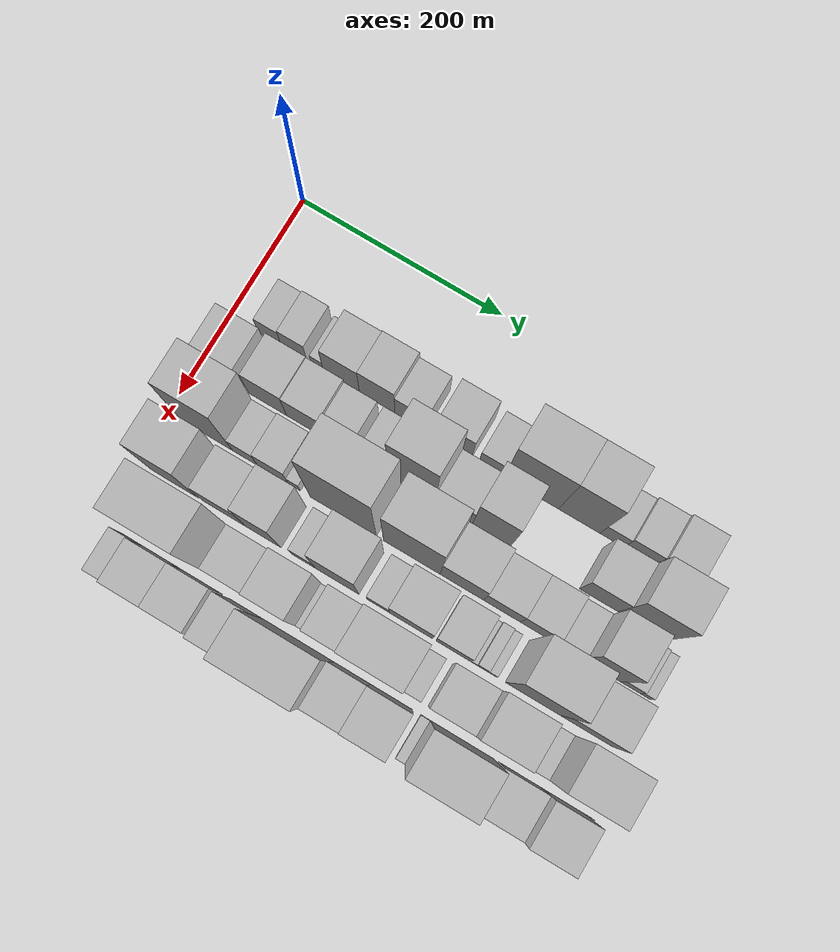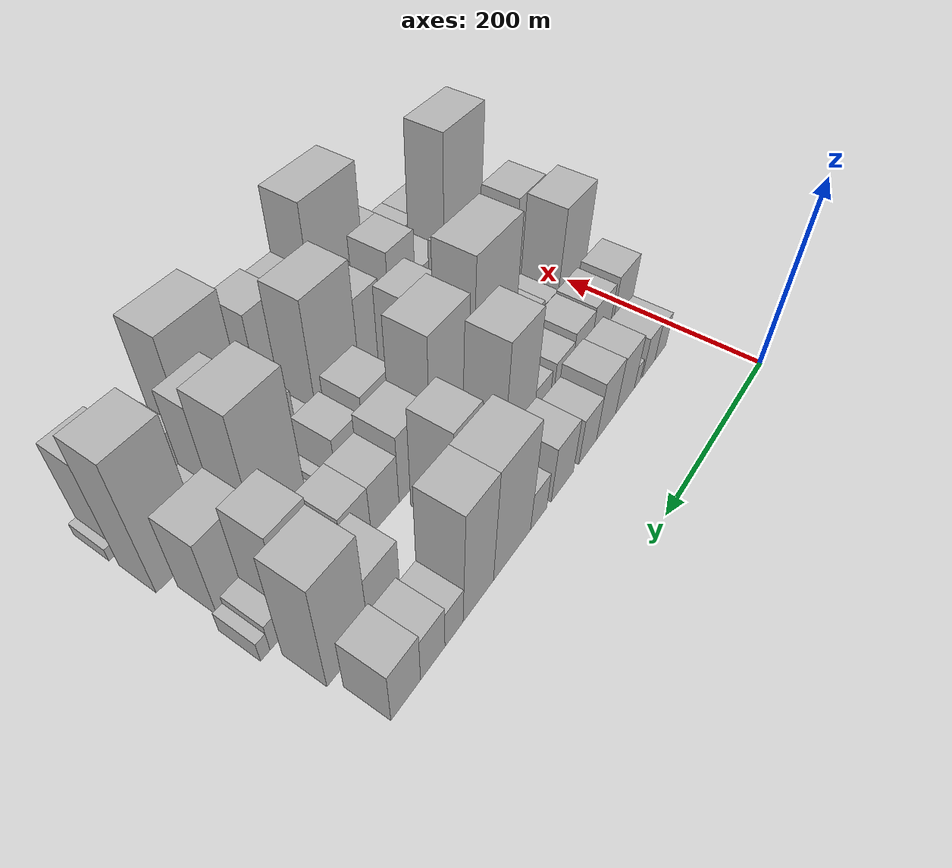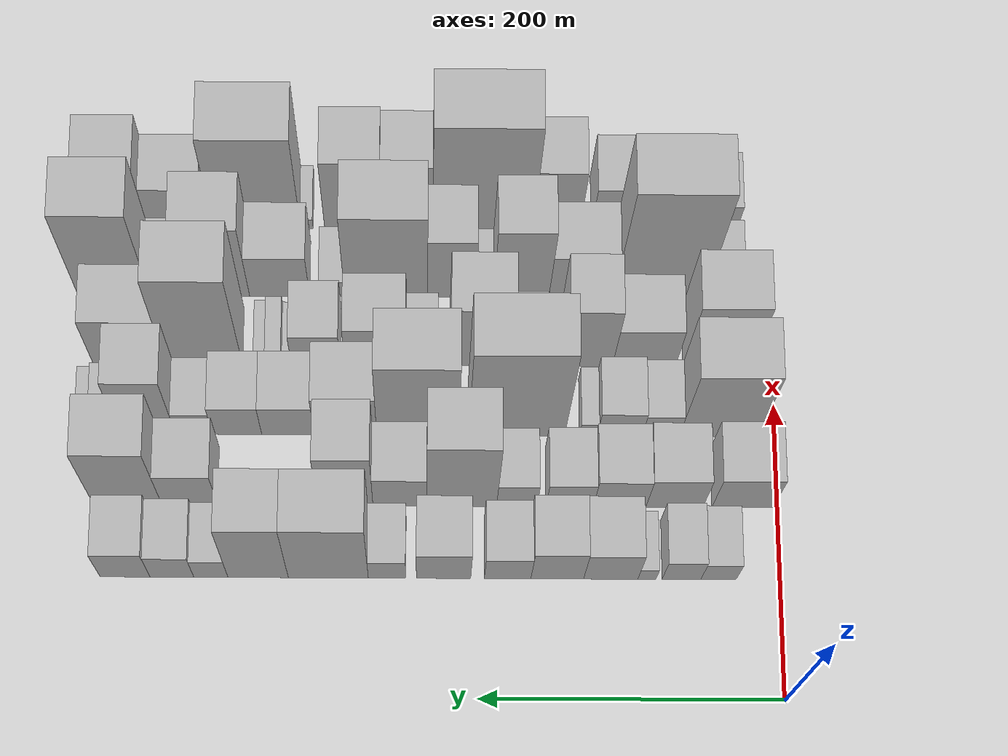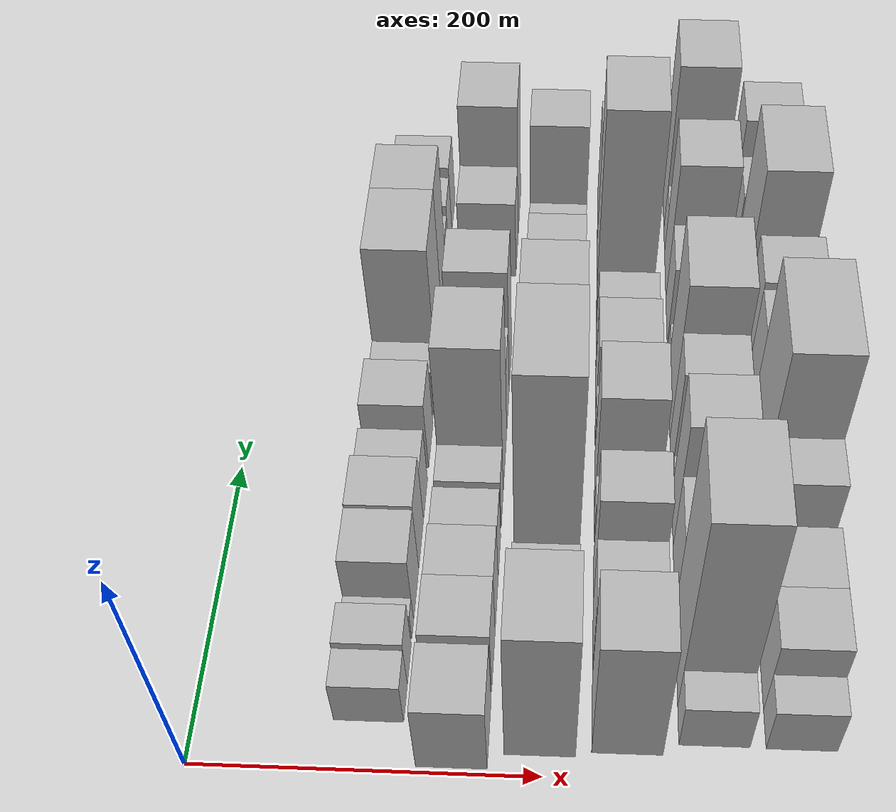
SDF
<sdf version="1.6">
 <world name="default">
  <model name="building_26">
   <static>1</static>
   <pose>100.0000 40.9273 0 0.000000 0.000000 0.000000</pose>
   <link name="link">
    <pose>0 0 21.00 0 0 0</pose>
    <collision name="collision"><geometry><box><size>40.0000 23.2941 42.0000</size></box></geometry></collision>
    <visual name="visual">
     <cast_shadows>0</cast_shadows>
     <geometry><box><size>40.0000 23.2941 42.0000</size></box></geometry>
     <material>
      <script>
       <uri>model://HANNAS_wall/materials/scripts</uri>
       <uri>model://HANNAS_wall/materials/textures</uri>
       <name>vrc/HANNAS_wall</name>
      </script>
     </material>
    </visual>
   </link>
  </model>
  <model name="building_27">
   <static>1</static>
   <pose>100.0000 65.3385 0 0.000000 0.000000 0.000000</pose>
   <link name="link">
    <pose>0 0 24.00 0 0 0</pose>
    <collision name="collision"><geometry><box><size>40.0000 25.5284 48.0000</size></box></geometry></collision>
    <visual name="visual">
     <cast_shadows>0</cast_shadows>
     <geometry><box><size>40.0000 25.5284 48.0000</size></box></geometry>
     <material>
      <script>
       <uri>model://HANNAS_wall/materials/scripts</uri>
       <uri>model://HANNAS_wall/materials/textures</uri>
       <name>vrc/HANNAS_wall</name>
      </script>
     </material>
    </visual>
   </link>
  </model>
  <model name="building_28">
   <static>1</static>
   <pose>100.0000 88.1129 0 0.000000 0.000000 0.000000</pose>
   <link name="link">
    <pose>0 0 13.50 0 0 0</pose>
    <collision name="collision"><geometry><box><size>40.0000 12.0204 27.0000</size></box></geometry></collision>
    <visual name="visual">
     <cast_shadows>0</cast_shadows>
     <geometry><box><size>40.0000 12.0204 27.0000</size></box></geometry>
     <material>
      <script>
       <uri>model://HANNAS_wall/materials/scripts</uri>
       <uri>model://HANNAS_wall/materials/textures</uri>
       <name>vrc/HANNAS_wall</name>
      </script>
     </material>
    </visual>
   </link>
  </model>
  <model name="building_29">
   <static>1</static>
   <pose>100.0000 112.0169 0 0.000000 0.000000 0.000000</pose>
   <link name="link">
    <pose>0 0 33.00 0 0 0</pose>
    <collision name="collision"><geometry><box><size>40.0000 35.7874 66.0000</size></box></geometry></collision>
    <visual name="visual">
     <cast_shadows>0</cast_shadows>
     <geometry><box><size>40.0000 35.7874 66.0000</size></box></geometry>
     <material>
      <script>
       <uri>model://HANNAS_wall/materials/scripts</uri>
       <uri>model://HANNAS_wall/materials/textures</uri>
       <name>vrc/HANNAS_wall</name>
      </script>
     </material>
    </visual>
   </link>
  </model>
  <model name="building_30">
   <static>1</static>
   <pose>100.0000 147.3166 0 0.000000 0.000000 0.000000</pose>
   <link name="link">
    <pose>0 0 34.50 0 0 0</pose>
    <collision name="collision"><geometry><box><size>40.0000 34.8121 69.0000</size></box></geometry></collision>
    <visual name="visual">
     <cast_shadows>0</cast_shadows>
     <geometry><box><size>40.0000 34.8121 69.0000</size></box></geometry>
     <material>
      <script>
       <uri>model://HANNAS_wall/materials/scripts</uri>
       <uri>model://HANNAS_wall/materials/textures</uri>
       <name>vrc/HANNAS_wall</name>
      </script>
     </material>
    </visual>
   </link>
  </model>
  <model name="building_31">
   <static>1</static>
   <pose>100.0000 180.0864 0 0.000000 0.000000 0.000000</pose>
   <link name="link">
    <pose>0 0 27.00 0 0 0</pose>
    <collision name="collision"><geometry><box><size>40.0000 30.7275 54.0000</size></box></geometry></collision>
    <visual name="visual">
     <cast_shadows>0</cast_shadows>
     <geometry><box><size>40.0000 30.7275 54.0000</size></box></geometry>
     <material>
      <script>
       <uri>model://HANNAS_wall/materials/scripts</uri>
       <uri>model://HANNAS_wall/materials/textures</uri>
       <name>vrc/HANNAS_wall</name>
      </script>
     </material>
    </visual>
   </link>
  </model>
  <model name="building_32">
   <static>1</static>
   <pose>100.0000 222.3811 0 0.000000 0.000000 0.000000</pose>
   <link name="link">
    <pose>0 0 33.00 0 0 0</pose>
    <collision name="collision"><geometry><box><size>40.0000 35.8618 66.0000</size></box></geometry></collision>
    <visual name="visual">
     <cast_shadows>0</cast_shadows>
     <geometry><box><size>40.0000 35.8618 66.0000</size></box></geometry>
     <material>
      <script>
       <uri>model://HANNAS_wall/materials/scripts</uri>
       <uri>model://HANNAS_wall/materials/textures</uri>
       <name>vrc/HANNAS_wall</name>
      </script>
     </material>
    </visual>
   </link>
  </model>
  <model name="building_33">
   <static>1</static>
   <pose>100.0000 259.6715 0 0.000000 0.000000 0.000000</pose>
   <link name="link">
    <pose>0 0 22.50 0 0 0</pose>
    <collision name="collision"><geometry><box><size>40.0000 24.7191 45.0000</size></box></geometry></collision>
    <visual name="visual">
     <cast_shadows>0</cast_shadows>
     <geometry><box><size>40.0000 24.7191 45.0000</size></box></geometry>
     <material>
      <script>
       <uri>model://HANNAS_wall/materials/scripts</uri>
       <uri>model://HANNAS_wall/materials/textures</uri>
       <name>vrc/HANNAS_wall</name>
      </script>
     </material>
    </visual>
   </link>
  </model>
  <model name="building_34">
   <static>1</static>
   <pose>100.0000 298.4205 0 0.000000 0.000000 0.000000</pose>
   <link name="link">
    <pose>0 0 66.00 0 0 0</pose>
    <collision name="collision"><geometry><box><size>40.0000 52.7788 132.0000</size></box></geometry></collision>
    <visual name="visual">
     <cast_shadows>0</cast_shadows>
     <geometry><box><size>40.0000 52.7788 132.0000</size></box></geometry>
     <material>
      <script>
       <uri>model://HANNAS_wall/materials/scripts</uri>
       <uri>model://HANNAS_wall/materials/textures</uri>
       <name>vrc/HANNAS_wall</name>
      </script>
     </material>
    </visual>
   </link>
  </model>
  <model name="building_35">
   <static>1</static>
   <pose>100.0000 344.7468 0 0.000000 0.000000 0.000000</pose>
   <link name="link">
    <pose>0 0 66.00 0 0 0</pose>
    <collision name="collision"><geometry><box><size>40.0000 39.8739 132.0000</size></box></geometry></collision>
    <visual name="visual">
     <cast_shadows>0</cast_shadows>
     <geometry><box><size>40.0000 39.8739 132.0000</size></box></geometry>
     <material>
      <script>
       <uri>model://HANNAS_wall/materials/scripts</uri>
       <uri>model://HANNAS_wall/materials/textures</uri>
       <name>vrc/HANNAS_wall</name>
      </script>
     </material>
    </visual>
   </link>
  </model>
  <model name="building_36">
   <static>1</static>
   <pose>100.0000 375.9424 0 0.000000 0.000000 0.000000</pose>
   <link name="link">
    <pose>0 0 22.50 0 0 0</pose>
    <collision name="collision"><geometry><box><size>40.0000 22.5172 45.0000</size></box></geometry></collision>
    <visual name="visual">
     <cast_shadows>0</cast_shadows>
     <geometry><box><size>40.0000 22.5172 45.0000</size></box></geometry>
     <material>
      <script>
       <uri>model://HANNAS_wall/materials/scripts</uri>
       <uri>model://HANNAS_wall/materials/textures</uri>
       <name>vrc/HANNAS_wall</name>
      </script>
     </material>
    </visual>
   </link>
  </model>
  <model name="building_37">
   <static>1</static>
   <pose>100.0000 401.6316 0 0.000000 0.000000 0.000000</pose>
   <link name="link">
    <pose>0 0 27.00 0 0 0</pose>
    <collision name="collision"><geometry><box><size>40.0000 28.8611 54.0000</size></box></geometry></collision>
    <visual name="visual">
     <cast_shadows>0</cast_shadows>
     <geometry><box><size>40.0000 28.8611 54.0000</size></box></geometry>
     <material>
      <script>
       <uri>model://HANNAS_wall/materials/scripts</uri>
       <uri>model://HANNAS_wall/materials/textures</uri>
       <name>vrc/HANNAS_wall</name>
      </script>
     </material>
    </visual>
   </link>
  </model>
  <model name="building_38">
   <static>1</static>
   <pose>100.0000 432.5570 0 0.000000 0.000000 0.000000</pose>
   <link name="link">
    <pose>0 0 31.50 0 0 0</pose>
    <collision name="collision"><geometry><box><size>40.0000 32.9896 63.0000</size></box></geometry></collision>
    <visual name="visual">
     <cast_shadows>0</cast_shadows>
     <geometry><box><size>40.0000 32.9896 63.0000</size></box></geometry>
     <material>
      <script>
       <uri>model://HANNAS_wall/materials/scripts</uri>
       <uri>model://HANNAS_wall/materials/textures</uri>
       <name>vrc/HANNAS_wall</name>
      </script>
     </material>
    </visual>
   </link>
  </model>
  <model name="building_75">
   <static>1</static>
   <pose>149.0000 23.5966 0 0.000000 0.000000 0.000000</pose>
   <link name="link">
    <pose>0 0 34.50 0 0 0</pose>
    <collision name="collision"><geometry><box><size>40.0000 40.5964 69.0000</size></box></geometry></collision>
    <visual name="visual">
     <cast_shadows>0</cast_shadows>
     <geometry><box><size>40.0000 40.5964 69.0000</size></box></geometry>
     <material>
      <script>
       <uri>model://HANNAS_wall/materials/scripts</uri>
       <uri>model://HANNAS_wall/materials/textures</uri>
       <name>vrc/HANNAS_wall</name>
      </script>
     </material>
    </visual>
   </link>
  </model>
  <model name="building_76">
   <static>1</static>
   <pose>149.0000 68.8350 0 0.000000 0.000000 0.000000</pose>
   <link name="link">
    <pose>0 0 33.00 0 0 0</pose>
    <collision name="collision"><geometry><box><size>40.0000 37.8805 66.0000</size></box></geometry></collision>
    <visual name="visual">
     <cast_shadows>0</cast_shadows>
     <geometry><box><size>40.0000 37.8805 66.0000</size></box></geometry>
     <material>
      <script>
       <uri>model://HANNAS_wall/materials/scripts</uri>
       <uri>model://HANNAS_wall/materials/textures</uri>
       <name>vrc/HANNAS_wall</name>
      </script>
     </material>
    </visual>
   </link>
  </model>
  <model name="building_77">
   <static>1</static>
   <pose>149.0000 105.3139 0 0.000000 0.000000 0.000000</pose>
   <link name="link">
    <pose>0 0 31.50 0 0 0</pose>
    <collision name="collision"><geometry><box><size>40.0000 35.0773 63.0000</size></box></geometry></collision>
    <visual name="visual">
     <cast_shadows>0</cast_shadows>
     <geometry><box><size>40.0000 35.0773 63.0000</size></box></geometry>
     <material>
      <script>
       <uri>model://HANNAS_wall/materials/scripts</uri>
       <uri>model://HANNAS_wall/materials/textures</uri>
       <name>vrc/HANNAS_wall</name>
      </script>
     </material>
    </visual>
   </link>
  </model>
  <model name="building_78">
   <static>1</static>
   <pose>149.0000 138.5867 0 0.000000 0.000000 0.000000</pose>
   <link name="link">
    <pose>0 0 27.00 0 0 0</pose>
    <collision name="collision"><geometry><box><size>40.0000 31.4684 54.0000</size></box></geometry></collision>
    <visual name="visual">
     <cast_shadows>0</cast_shadows>
     <geometry><box><size>40.0000 31.4684 54.0000</size></box></geometry>
     <material>
      <script>
       <uri>model://HANNAS_wall/materials/scripts</uri>
       <uri>model://HANNAS_wall/materials/textures</uri>
       <name>vrc/HANNAS_wall</name>
      </script>
     </material>
    </visual>
   </link>
  </model>
  <model name="building_79">
   <static>1</static>
   <pose>149.0000 173.7759 0 0.000000 0.000000 0.000000</pose>
   <link name="link">
    <pose>0 0 25.50 0 0 0</pose>
    <collision name="collision"><geometry><box><size>40.0000 26.9100 51.0000</size></box></geometry></collision>
    <visual name="visual">
     <cast_shadows>0</cast_shadows>
     <geometry><box><size>40.0000 26.9100 51.0000</size></box></geometry>
     <material>
      <script>
       <uri>model://HANNAS_wall/materials/scripts</uri>
       <uri>model://HANNAS_wall/materials/textures</uri>
       <name>vrc/HANNAS_wall</name>
      </script>
     </material>
    </visual>
   </link>
  </model>
  <model name="building_80">
   <static>1</static>
   <pose>149.0000 210.4363 0 0.000000 0.000000 0.000000</pose>
   <link name="link">
    <pose>0 0 72.00 0 0 0</pose>
    <collision name="collision"><geometry><box><size>40.0000 46.4108 144.0000</size></box></geometry></collision>
    <visual name="visual">
     <cast_shadows>0</cast_shadows>
     <geometry><box><size>40.0000 46.4108 144.0000</size></box></geometry>
     <material>
      <script>
       <uri>model://HANNAS_wall/materials/scripts</uri>
       <uri>model://HANNAS_wall/materials/textures</uri>
       <name>vrc/HANNAS_wall</name>
      </script>
     </material>
    </visual>
   </link>
  </model>
  <model name="building_81">
   <static>1</static>
   <pose>149.0000 251.5522 0 0.000000 0.000000 0.000000</pose>
   <link name="link">
    <pose>0 0 33.00 0 0 0</pose>
    <collision name="collision"><geometry><box><size>40.0000 35.8211 66.0000</size></box></geometry></collision>
    <visual name="visual">
     <cast_shadows>0</cast_shadows>
     <geometry><box><size>40.0000 35.8211 66.0000</size></box></geometry>
     <material>
      <script>
       <uri>model://HANNAS_wall/materials/scripts</uri>
       <uri>model://HANNAS_wall/materials/textures</uri>
       <name>vrc/HANNAS_wall</name>
      </script>
     </material>
    </visual>
   </link>
  </model>
  <model name="building_82">
   <static>1</static>
   <pose>149.0000 287.7121 0 0.000000 0.000000 0.000000</pose>
   <link name="link">
    <pose>0 0 58.50 0 0 0</pose>
    <collision name="collision"><geometry><box><size>40.0000 36.4986 117.0000</size></box></geometry></collision>
    <visual name="visual">
     <cast_shadows>0</cast_shadows>
     <geometry><box><size>40.0000 36.4986 117.0000</size></box></geometry>
     <material>
      <script>
       <uri>model://HANNAS_wall/materials/scripts</uri>
       <uri>model://HANNAS_wall/materials/textures</uri>
       <name>vrc/HANNAS_wall</name>
      </script>
     </material>
    </visual>
   </link>
  </model>
  <model name="building_83">
   <static>1</static>
   <pose>149.0000 391.4420 0 0.000000 0.000000 0.000000</pose>
   <link name="link">
    <pose>0 0 36.00 0 0 0</pose>
    <collision name="collision"><geometry><box><size>40.0000 36.9871 72.0000</size></box></geometry></collision>
    <visual name="visual">
     <cast_shadows>0</cast_shadows>
     <geometry><box><size>40.0000 36.9871 72.0000</size></box></geometry>
     <material>
      <script>
       <uri>model://HANNAS_wall/materials/scripts</uri>
       <uri>model://HANNAS_wall/materials/textures</uri>
       <name>vrc/HANNAS_wall</name>
      </script>
     </material>
    </visual>
   </link>
  </model>
  <model name="building_84">
   <static>1</static>
   <pose>149.0000 432.7237 0 0.000000 0.000000 0.000000</pose>
   <link name="link">
    <pose>0 0 63.00 0 0 0</pose>
    <collision name="collision"><geometry><box><size>40.0000 45.5762 126.0000</size></box></geometry></collision>
    <visual name="visual">
     <cast_shadows>0</cast_shadows>
     <geometry><box><size>40.0000 45.5762 126.0000</size></box></geometry>
     <material>
      <script>
       <uri>model://HANNAS_wall/materials/scripts</uri>
       <uri>model://HANNAS_wall/materials/textures</uri>
       <name>vrc/HANNAS_wall</name>
      </script>
     </material>
    </visual>
   </link>
  </model>
  <model name="building_122">
   <static>1</static>
   <pose>198.0000 38.3296 0 0.000000 0.000000 0.000000</pose>
   <link name="link">
    <pose>0 0 67.50 0 0 0</pose>
    <collision name="collision"><geometry><box><size>40.0000 52.1676 135.0000</size></box></geometry></collision>
    <visual name="visual">
     <cast_shadows>0</cast_shadows>
     <geometry><box><size>40.0000 52.1676 135.0000</size></box></geometry>
     <material>
      <script>
       <uri>model://HANNAS_wall/materials/scripts</uri>
       <uri>model://HANNAS_wall/materials/textures</uri>
       <name>vrc/HANNAS_wall</name>
      </script>
     </material>
    </visual>
   </link>
  </model>
  <model name="building_123">
   <static>1</static>
   <pose>198.0000 76.8443 0 0.000000 0.000000 0.000000</pose>
   <link name="link">
    <pose>0 0 22.50 0 0 0</pose>
    <collision name="collision"><geometry><box><size>40.0000 24.8618 45.0000</size></box></geometry></collision>
    <visual name="visual">
     <cast_shadows>0</cast_shadows>
     <geometry><box><size>40.0000 24.8618 45.0000</size></box></geometry>
     <material>
      <script>
       <uri>model://HANNAS_wall/materials/scripts</uri>
       <uri>model://HANNAS_wall/materials/textures</uri>
       <name>vrc/HANNAS_wall</name>
      </script>
     </material>
    </visual>
   </link>
  </model>
  <model name="building_124">
   <static>1</static>
   <pose>198.0000 104.3820 0 0.000000 0.000000 0.000000</pose>
   <link name="link">
    <pose>0 0 25.50 0 0 0</pose>
    <collision name="collision"><geometry><box><size>40.0000 30.2136 51.0000</size></box></geometry></collision>
    <visual name="visual">
     <cast_shadows>0</cast_shadows>
     <geometry><box><size>40.0000 30.2136 51.0000</size></box></geometry>
     <material>
      <script>
       <uri>model://HANNAS_wall/materials/scripts</uri>
       <uri>model://HANNAS_wall/materials/textures</uri>
       <name>vrc/HANNAS_wall</name>
      </script>
     </material>
    </visual>
   </link>
  </model>
  <model name="building_125">
   <static>1</static>
   <pose>198.0000 125.4242 0 0.000000 0.000000 0.000000</pose>
   <link name="link">
    <pose>0 0 13.50 0 0 0</pose>
    <collision name="collision"><geometry><box><size>40.0000 11.8709 27.0000</size></box></geometry></collision>
    <visual name="visual">
     <cast_shadows>0</cast_shadows>
     <geometry><box><size>40.0000 11.8709 27.0000</size></box></geometry>
     <material>
      <script>
       <uri>model://HANNAS_wall/materials/scripts</uri>
       <uri>model://HANNAS_wall/materials/textures</uri>
       <name>vrc/HANNAS_wall</name>
      </script>
     </material>
    </visual>
   </link>
  </model>
  <model name="building_126">
   <static>1</static>
   <pose>198.0000 173.5772 0 0.000000 0.000000 0.000000</pose>
   <link name="link">
    <pose>0 0 90.00 0 0 0</pose>
    <collision name="collision"><geometry><box><size>40.0000 64.4351 180.0000</size></box></geometry></collision>
    <visual name="visual">
     <cast_shadows>0</cast_shadows>
     <geometry><box><size>40.0000 64.4351 180.0000</size></box></geometry>
     <material>
      <script>
       <uri>model://HANNAS_wall/materials/scripts</uri>
       <uri>model://HANNAS_wall/materials/textures</uri>
       <name>vrc/HANNAS_wall</name>
      </script>
     </material>
    </visual>
   </link>
  </model>
  <model name="building_127">
   <static>1</static>
   <pose>198.0000 240.1357 0 0.000000 0.000000 0.000000</pose>
   <link name="link">
    <pose>0 0 75.00 0 0 0</pose>
    <collision name="collision"><geometry><box><size>40.0000 54.6819 150.0000</size></box></geometry></collision>
    <visual name="visual">
     <cast_shadows>0</cast_shadows>
     <geometry><box><size>40.0000 54.6819 150.0000</size></box></geometry>
     <material>
      <script>
       <uri>model://HANNAS_wall/materials/scripts</uri>
       <uri>model://HANNAS_wall/materials/textures</uri>
       <name>vrc/HANNAS_wall</name>
      </script>
     </material>
    </visual>
   </link>
  </model>
  <model name="building_128">
   <static>1</static>
   <pose>198.0000 288.4253 0 0.000000 0.000000 0.000000</pose>
   <link name="link">
    <pose>0 0 40.50 0 0 0</pose>
    <collision name="collision"><geometry><box><size>40.0000 41.8972 81.0000</size></box></geometry></collision>
    <visual name="visual">
     <cast_shadows>0</cast_shadows>
     <geometry><box><size>40.0000 41.8972 81.0000</size></box></geometry>
     <material>
      <script>
       <uri>model://HANNAS_wall/materials/scripts</uri>
       <uri>model://HANNAS_wall/materials/textures</uri>
       <name>vrc/HANNAS_wall</name>
      </script>
     </material>
    </visual>
   </link>
  </model>
  <model name="building_129">
   <static>1</static>
   <pose>198.0000 327.0059 0 0.000000 0.000000 0.000000</pose>
   <link name="link">
    <pose>0 0 30.00 0 0 0</pose>
    <collision name="collision"><geometry><box><size>40.0000 35.2640 60.0000</size></box></geometry></collision>
    <visual name="visual">
     <cast_shadows>0</cast_shadows>
     <geometry><box><size>40.0000 35.2640 60.0000</size></box></geometry>
     <material>
      <script>
       <uri>model://HANNAS_wall/materials/scripts</uri>
       <uri>model://HANNAS_wall/materials/textures</uri>
       <name>vrc/HANNAS_wall</name>
      </script>
     </material>
    </visual>
   </link>
  </model>
  <model name="building_130">
   <static>1</static>
   <pose>198.0000 361.1175 0 0.000000 0.000000 0.000000</pose>
   <link name="link">
    <pose>0 0 30.00 0 0 0</pose>
    <collision name="collision"><geometry><box><size>40.0000 32.9593 60.0000</size></box></geometry></collision>
    <visual name="visual">
     <cast_shadows>0</cast_shadows>
     <geometry><box><size>40.0000 32.9593 60.0000</size></box></geometry>
     <material>
      <script>
       <uri>model://HANNAS_wall/materials/scripts</uri>
       <uri>model://HANNAS_wall/materials/textures</uri>
       <name>vrc/HANNAS_wall</name>
      </script>
     </material>
    </visual>
   </link>
  </model>
  <model name="building_131">
   <static>1</static>
   <pose>198.0000 390.0472 0 0.000000 0.000000 0.000000</pose>
   <link name="link">
    <pose>0 0 22.50 0 0 0</pose>
    <collision name="collision"><geometry><box><size>40.0000 24.9001 45.0000</size></box></geometry></collision>
    <visual name="visual">
     <cast_shadows>0</cast_shadows>
     <geometry><box><size>40.0000 24.9001 45.0000</size></box></geometry>
     <material>
      <script>
       <uri>model://HANNAS_wall/materials/scripts</uri>
       <uri>model://HANNAS_wall/materials/textures</uri>
       <name>vrc/HANNAS_wall</name>
      </script>
     </material>
    </visual>
   </link>
  </model>
  <model name="building_132">
   <static>1</static>
   <pose>198.0000 421.1160 0 0.000000 0.000000 0.000000</pose>
   <link name="link">
    <pose>0 0 58.50 0 0 0</pose>
    <collision name="collision"><geometry><box><size>40.0000 37.2373 117.0000</size></box></geometry></collision>
    <visual name="visual">
     <cast_shadows>0</cast_shadows>
     <geometry><box><size>40.0000 37.2373 117.0000</size></box></geometry>
     <material>
      <script>
       <uri>model://HANNAS_wall/materials/scripts</uri>
       <uri>model://HANNAS_wall/materials/textures</uri>
       <name>vrc/HANNAS_wall</name>
      </script>
     </material>
    </visual>
   </link>
  </model>
  <model name="building_133">
   <static>1</static>
   <pose>198.0000 448.8676 0 0.000000 0.000000 0.000000</pose>
   <link name="link">
    <pose>0 0 16.50 0 0 0</pose>
    <collision name="collision"><geometry><box><size>40.0000 18.2660 33.0000</size></box></geometry></collision>
    <visual name="visual">
     <cast_shadows>0</cast_shadows>
     <geometry><box><size>40.0000 18.2660 33.0000</size></box></geometry>
     <material>
      <script>
       <uri>model://HANNAS_wall/materials/scripts</uri>
       <uri>model://HANNAS_wall/materials/textures</uri>
       <name>vrc/HANNAS_wall</name>
      </script>
     </material>
    </visual>
   </link>
  </model>
  <model name="building_134">
   <static>1</static>
   <pose>198.0000 462.8233 0 0.000000 0.000000 0.000000</pose>
   <link name="link">
    <pose>0 0 12.00 0 0 0</pose>
    <collision name="collision"><geometry><box><size>40.0000 9.6454 24.0000</size></box></geometry></collision>
    <visual name="visual">
     <cast_shadows>0</cast_shadows>
     <geometry><box><size>40.0000 9.6454 24.0000</size></box></geometry>
     <material>
      <script>
       <uri>model://HANNAS_wall/materials/scripts</uri>
       <uri>model://HANNAS_wall/materials/textures</uri>
       <name>vrc/HANNAS_wall</name>
      </script>
     </material>
    </visual>
   </link>
  </model>
  <model name="building_169">
   <static>1</static>
   <pose>247.0000 37.9396 0 0.000000 0.000000 0.000000</pose>
   <link name="link">
    <pose>0 0 61.50 0 0 0</pose>
    <collision name="collision"><geometry><box><size>40.0000 45.5800 123.0000</size></box></geometry></collision>
    <visual name="visual">
     <cast_shadows>0</cast_shadows>
     <geometry><box><size>40.0000 45.5800 123.0000</size></box></geometry>
     <material>
      <script>
       <uri>model://HANNAS_wall/materials/scripts</uri>
       <uri>model://HANNAS_wall/materials/textures</uri>
       <name>vrc/HANNAS_wall</name>
      </script>
     </material>
    </visual>
   </link>
  </model>
  <model name="building_170">
   <static>1</static>
   <pose>247.0000 87.1228 0 0.000000 0.000000 0.000000</pose>
   <link name="link">
    <pose>0 0 37.50 0 0 0</pose>
    <collision name="collision"><geometry><box><size>40.0000 42.7863 75.0000</size></box></geometry></collision>
    <visual name="visual">
     <cast_shadows>0</cast_shadows>
     <geometry><box><size>40.0000 42.7863 75.0000</size></box></geometry>
     <material>
      <script>
       <uri>model://HANNAS_wall/materials/scripts</uri>
       <uri>model://HANNAS_wall/materials/textures</uri>
       <name>vrc/HANNAS_wall</name>
      </script>
     </material>
    </visual>
   </link>
  </model>
  <model name="building_171">
   <static>1</static>
   <pose>247.0000 125.6208 0 0.000000 0.000000 0.000000</pose>
   <link name="link">
    <pose>0 0 57.00 0 0 0</pose>
    <collision name="collision"><geometry><box><size>40.0000 34.2097 114.0000</size></box></geometry></collision>
    <visual name="visual">
     <cast_shadows>0</cast_shadows>
     <geometry><box><size>40.0000 34.2097 114.0000</size></box></geometry>
     <material>
      <script>
       <uri>model://HANNAS_wall/materials/scripts</uri>
       <uri>model://HANNAS_wall/materials/textures</uri>
       <name>vrc/HANNAS_wall</name>
      </script>
     </material>
    </visual>
   </link>
  </model>
  <model name="building_172">
   <static>1</static>
   <pose>247.0000 164.4055 0 0.000000 0.000000 0.000000</pose>
   <link name="link">
    <pose>0 0 19.50 0 0 0</pose>
    <collision name="collision"><geometry><box><size>40.0000 23.3596 39.0000</size></box></geometry></collision>
    <visual name="visual">
     <cast_shadows>0</cast_shadows>
     <geometry><box><size>40.0000 23.3596 39.0000</size></box></geometry>
     <material>
      <script>
       <uri>model://HANNAS_wall/materials/scripts</uri>
       <uri>model://HANNAS_wall/materials/textures</uri>
       <name>vrc/HANNAS_wall</name>
      </script>
     </material>
    </visual>
   </link>
  </model>
  <model name="building_173">
   <static>1</static>
   <pose>247.0000 197.2470 0 0.000000 0.000000 0.000000</pose>
   <link name="link">
    <pose>0 0 58.50 0 0 0</pose>
    <collision name="collision"><geometry><box><size>40.0000 42.3234 117.0000</size></box></geometry></collision>
    <visual name="visual">
     <cast_shadows>0</cast_shadows>
     <geometry><box><size>40.0000 42.3234 117.0000</size></box></geometry>
     <material>
      <script>
       <uri>model://HANNAS_wall/materials/scripts</uri>
       <uri>model://HANNAS_wall/materials/textures</uri>
       <name>vrc/HANNAS_wall</name>
      </script>
     </material>
    </visual>
   </link>
  </model>
  <model name="building_174">
   <static>1</static>
   <pose>247.0000 237.1742 0 0.000000 0.000000 0.000000</pose>
   <link name="link">
    <pose>0 0 18.00 0 0 0</pose>
    <collision name="collision"><geometry><box><size>40.0000 21.5310 36.0000</size></box></geometry></collision>
    <visual name="visual">
     <cast_shadows>0</cast_shadows>
     <geometry><box><size>40.0000 21.5310 36.0000</size></box></geometry>
     <material>
      <script>
       <uri>model://HANNAS_wall/materials/scripts</uri>
       <uri>model://HANNAS_wall/materials/textures</uri>
       <name>vrc/HANNAS_wall</name>
      </script>
     </material>
    </visual>
   </link>
  </model>
  <model name="building_175">
   <static>1</static>
   <pose>247.0000 268.7239 0 0.000000 0.000000 0.000000</pose>
   <link name="link">
    <pose>0 0 37.50 0 0 0</pose>
    <collision name="collision"><geometry><box><size>40.0000 41.5685 75.0000</size></box></geometry></collision>
    <visual name="visual">
     <cast_shadows>0</cast_shadows>
     <geometry><box><size>40.0000 41.5685 75.0000</size></box></geometry>
     <material>
      <script>
       <uri>model://HANNAS_wall/materials/scripts</uri>
       <uri>model://HANNAS_wall/materials/textures</uri>
       <name>vrc/HANNAS_wall</name>
      </script>
     </material>
    </visual>
   </link>
  </model>
  <model name="building_176">
   <static>1</static>
   <pose>247.0000 309.0867 0 0.000000 0.000000 0.000000</pose>
   <link name="link">
    <pose>0 0 30.00 0 0 0</pose>
    <collision name="collision"><geometry><box><size>40.0000 33.1571 60.0000</size></box></geometry></collision>
    <visual name="visual">
     <cast_shadows>0</cast_shadows>
     <geometry><box><size>40.0000 33.1571 60.0000</size></box></geometry>
     <material>
      <script>
       <uri>model://HANNAS_wall/materials/scripts</uri>
       <uri>model://HANNAS_wall/materials/textures</uri>
       <name>vrc/HANNAS_wall</name>
      </script>
     </material>
    </visual>
   </link>
  </model>
  <model name="building_177">
   <static>1</static>
   <pose>247.0000 328.7197 0 0.000000 0.000000 0.000000</pose>
   <link name="link">
    <pose>0 0 7.50 0 0 0</pose>
    <collision name="collision"><geometry><box><size>40.0000 6.1088 15.0000</size></box></geometry></collision>
    <visual name="visual">
     <cast_shadows>0</cast_shadows>
     <geometry><box><size>40.0000 6.1088 15.0000</size></box></geometry>
     <material>
      <script>
       <uri>model://HANNAS_wall/materials/scripts</uri>
       <uri>model://HANNAS_wall/materials/textures</uri>
       <name>vrc/HANNAS_wall</name>
      </script>
     </material>
    </visual>
   </link>
  </model>
  <model name="building_178">
   <static>1</static>
   <pose>247.0000 337.2028 0 0.000000 0.000000 0.000000</pose>
   <link name="link">
    <pose>0 0 13.50 0 0 0</pose>
    <collision name="collision"><geometry><box><size>40.0000 10.8574 27.0000</size></box></geometry></collision>
    <visual name="visual">
     <cast_shadows>0</cast_shadows>
     <geometry><box><size>40.0000 10.8574 27.0000</size></box></geometry>
     <material>
      <script>
       <uri>model://HANNAS_wall/materials/scripts</uri>
       <uri>model://HANNAS_wall/materials/textures</uri>
       <name>vrc/HANNAS_wall</name>
      </script>
     </material>
    </visual>
   </link>
  </model>
  <model name="building_179">
   <static>1</static>
   <pose>247.0000 346.7066 0 0.000000 0.000000 0.000000</pose>
   <link name="link">
    <pose>0 0 9.00 0 0 0</pose>
    <collision name="collision"><geometry><box><size>40.0000 8.1502 18.0000</size></box></geometry></collision>
    <visual name="visual">
     <cast_shadows>0</cast_shadows>
     <geometry><box><size>40.0000 8.1502 18.0000</size></box></geometry>
     <material>
      <script>
       <uri>model://HANNAS_wall/materials/scripts</uri>
       <uri>model://HANNAS_wall/materials/textures</uri>
       <name>vrc/HANNAS_wall</name>
      </script>
     </material>
    </visual>
   </link>
  </model>
  <model name="building_180">
   <static>1</static>
   <pose>247.0000 384.7025 0 0.000000 0.000000 0.000000</pose>
   <link name="link">
    <pose>0 0 85.50 0 0 0</pose>
    <collision name="collision"><geometry><box><size>40.0000 51.8416 171.0000</size></box></geometry></collision>
    <visual name="visual">
     <cast_shadows>0</cast_shadows>
     <geometry><box><size>40.0000 51.8416 171.0000</size></box></geometry>
     <material>
      <script>
       <uri>model://HANNAS_wall/materials/scripts</uri>
       <uri>model://HANNAS_wall/materials/textures</uri>
       <name>vrc/HANNAS_wall</name>
      </script>
     </material>
    </visual>
   </link>
  </model>
  <model name="building_181">
   <static>1</static>
   <pose>247.0000 435.2918 0 0.000000 0.000000 0.000000</pose>
   <link name="link">
    <pose>0 0 45.00 0 0 0</pose>
    <collision name="collision"><geometry><box><size>40.0000 49.3371 90.0000</size></box></geometry></collision>
    <visual name="visual">
     <cast_shadows>0</cast_shadows>
     <geometry><box><size>40.0000 49.3371 90.0000</size></box></geometry>
     <material>
      <script>
       <uri>model://HANNAS_wall/materials/scripts</uri>
       <uri>model://HANNAS_wall/materials/textures</uri>
       <name>vrc/HANNAS_wall</name>
      </script>
     </material>
    </visual>
   </link>
  </model>
  <model name="building_216">
   <static>1</static>
   <pose>296.0000 33.2826 0 0.000000 0.000000 0.000000</pose>
   <link name="link">
    <pose>0 0 22.50 0 0 0</pose>
    <collision name="collision"><geometry><box><size>40.0000 23.3138 45.0000</size></box></geometry></collision>
    <visual name="visual">
     <cast_shadows>0</cast_shadows>
     <geometry><box><size>40.0000 23.3138 45.0000</size></box></geometry>
     <material>
      <script>
       <uri>model://HANNAS_wall/materials/scripts</uri>
       <uri>model://HANNAS_wall/materials/textures</uri>
       <name>vrc/HANNAS_wall</name>
      </script>
     </material>
    </visual>
   </link>
  </model>
  <model name="building_217">
   <static>1</static>
   <pose>296.0000 75.8683 0 0.000000 0.000000 0.000000</pose>
   <link name="link">
    <pose>0 0 97.50 0 0 0</pose>
    <collision name="collision"><geometry><box><size>40.0000 61.8577 195.0000</size></box></geometry></collision>
    <visual name="visual">
     <cast_shadows>0</cast_shadows>
     <geometry><box><size>40.0000 61.8577 195.0000</size></box></geometry>
     <material>
      <script>
       <uri>model://HANNAS_wall/materials/scripts</uri>
       <uri>model://HANNAS_wall/materials/textures</uri>
       <name>vrc/HANNAS_wall</name>
      </script>
     </material>
    </visual>
   </link>
  </model>
  <model name="building_218">
   <static>1</static>
   <pose>296.0000 128.8824 0 0.000000 0.000000 0.000000</pose>
   <link name="link">
    <pose>0 0 39.00 0 0 0</pose>
    <collision name="collision"><geometry><box><size>40.0000 44.1704 78.0000</size></box></geometry></collision>
    <visual name="visual">
     <cast_shadows>0</cast_shadows>
     <geometry><box><size>40.0000 44.1704 78.0000</size></box></geometry>
     <material>
      <script>
       <uri>model://HANNAS_wall/materials/scripts</uri>
       <uri>model://HANNAS_wall/materials/textures</uri>
       <name>vrc/HANNAS_wall</name>
      </script>
     </material>
    </visual>
   </link>
  </model>
  <model name="building_219">
   <static>1</static>
   <pose>296.0000 169.9615 0 0.000000 0.000000 0.000000</pose>
   <link name="link">
    <pose>0 0 63.00 0 0 0</pose>
    <collision name="collision"><geometry><box><size>40.0000 37.9879 126.0000</size></box></geometry></collision>
    <visual name="visual">
     <cast_shadows>0</cast_shadows>
     <geometry><box><size>40.0000 37.9879 126.0000</size></box></geometry>
     <material>
      <script>
       <uri>model://HANNAS_wall/materials/scripts</uri>
       <uri>model://HANNAS_wall/materials/textures</uri>
       <name>vrc/HANNAS_wall</name>
      </script>
     </material>
    </visual>
   </link>
  </model>
  <model name="building_220">
   <static>1</static>
   <pose>296.0000 195.0657 0 0.000000 0.000000 0.000000</pose>
   <link name="link">
    <pose>0 0 13.50 0 0 0</pose>
    <collision name="collision"><geometry><box><size>40.0000 12.2204 27.0000</size></box></geometry></collision>
    <visual name="visual">
     <cast_shadows>0</cast_shadows>
     <geometry><box><size>40.0000 12.2204 27.0000</size></box></geometry>
     <material>
      <script>
       <uri>model://HANNAS_wall/materials/scripts</uri>
       <uri>model://HANNAS_wall/materials/textures</uri>
       <name>vrc/HANNAS_wall</name>
      </script>
     </material>
    </visual>
   </link>
  </model>
  <model name="building_221">
   <static>1</static>
   <pose>296.0000 217.4576 0 0.000000 0.000000 0.000000</pose>
   <link name="link">
    <pose>0 0 54.00 0 0 0</pose>
    <collision name="collision"><geometry><box><size>40.0000 32.5634 108.0000</size></box></geometry></collision>
    <visual name="visual">
     <cast_shadows>0</cast_shadows>
     <geometry><box><size>40.0000 32.5634 108.0000</size></box></geometry>
     <material>
      <script>
       <uri>model://HANNAS_wall/materials/scripts</uri>
       <uri>model://HANNAS_wall/materials/textures</uri>
       <name>vrc/HANNAS_wall</name>
      </script>
     </material>
    </visual>
   </link>
  </model>
  <model name="building_222">
   <static>1</static>
   <pose>296.0000 262.0290 0 0.000000 0.000000 0.000000</pose>
   <link name="link">
    <pose>0 0 75.00 0 0 0</pose>
    <collision name="collision"><geometry><box><size>40.0000 56.5795 150.0000</size></box></geometry></collision>
    <visual name="visual">
     <cast_shadows>0</cast_shadows>
     <geometry><box><size>40.0000 56.5795 150.0000</size></box></geometry>
     <material>
      <script>
       <uri>model://HANNAS_wall/materials/scripts</uri>
       <uri>model://HANNAS_wall/materials/textures</uri>
       <name>vrc/HANNAS_wall</name>
      </script>
     </material>
    </visual>
   </link>
  </model>
  <model name="building_223">
   <static>1</static>
   <pose>296.0000 298.7848 0 0.000000 0.000000 0.000000</pose>
   <link name="link">
    <pose>0 0 15.00 0 0 0</pose>
    <collision name="collision"><geometry><box><size>40.0000 16.9320 30.0000</size></box></geometry></collision>
    <visual name="visual">
     <cast_shadows>0</cast_shadows>
     <geometry><box><size>40.0000 16.9320 30.0000</size></box></geometry>
     <material>
      <script>
       <uri>model://HANNAS_wall/materials/scripts</uri>
       <uri>model://HANNAS_wall/materials/textures</uri>
       <name>vrc/HANNAS_wall</name>
      </script>
     </material>
    </visual>
   </link>
  </model>
  <model name="building_224">
   <static>1</static>
   <pose>296.0000 334.7481 0 0.000000 0.000000 0.000000</pose>
   <link name="link">
    <pose>0 0 37.50 0 0 0</pose>
    <collision name="collision"><geometry><box><size>40.0000 40.9947 75.0000</size></box></geometry></collision>
    <visual name="visual">
     <cast_shadows>0</cast_shadows>
     <geometry><box><size>40.0000 40.9947 75.0000</size></box></geometry>
     <material>
      <script>
       <uri>model://HANNAS_wall/materials/scripts</uri>
       <uri>model://HANNAS_wall/materials/textures</uri>
       <name>vrc/HANNAS_wall</name>
      </script>
     </material>
    </visual>
   </link>
  </model>
  <model name="building_225">
   <static>1</static>
   <pose>296.0000 377.5438 0 0.000000 0.000000 0.000000</pose>
   <link name="link">
    <pose>0 0 64.50 0 0 0</pose>
    <collision name="collision"><geometry><box><size>40.0000 44.5965 129.0000</size></box></geometry></collision>
    <visual name="visual">
     <cast_shadows>0</cast_shadows>
     <geometry><box><size>40.0000 44.5965 129.0000</size></box></geometry>
     <material>
      <script>
       <uri>model://HANNAS_wall/materials/scripts</uri>
       <uri>model://HANNAS_wall/materials/textures</uri>
       <name>vrc/HANNAS_wall</name>
      </script>
     </material>
    </visual>
   </link>
  </model>
  <model name="building_226">
   <static>1</static>
   <pose>296.0000 411.6336 0 0.000000 0.000000 0.000000</pose>
   <link name="link">
    <pose>0 0 22.50 0 0 0</pose>
    <collision name="collision"><geometry><box><size>40.0000 23.5832 45.0000</size></box></geometry></collision>
    <visual name="visual">
     <cast_shadows>0</cast_shadows>
     <geometry><box><size>40.0000 23.5832 45.0000</size></box></geometry>
     <material>
      <script>
       <uri>model://HANNAS_wall/materials/scripts</uri>
       <uri>model://HANNAS_wall/materials/textures</uri>
       <name>vrc/HANNAS_wall</name>
      </script>
     </material>
    </visual>
   </link>
  </model>
  <model name="building_227">
   <static>1</static>
   <pose>296.0000 447.9472 0 0.000000 0.000000 0.000000</pose>
   <link name="link">
    <pose>0 0 76.50 0 0 0</pose>
    <collision name="collision"><geometry><box><size>40.0000 49.0439 153.0000</size></box></geometry></collision>
    <visual name="visual">
     <cast_shadows>0</cast_shadows>
     <geometry><box><size>40.0000 49.0439 153.0000</size></box></geometry>
     <material>
      <script>
       <uri>model://HANNAS_wall/materials/scripts</uri>
       <uri>model://HANNAS_wall/materials/textures</uri>
       <name>vrc/HANNAS_wall</name>
      </script>
     </material>
    </visual>
   </link>
  </model>
  <model name="building_267">
   <static>1</static>
   <pose>345.0000 32.7799 0 0.000000 0.000000 0.000000</pose>
   <link name="link">
    <pose>0 0 22.50 0 0 0</pose>
    <collision name="collision"><geometry><box><size>40.0000 23.1460 45.0000</size></box></geometry></collision>
    <visual name="visual">
     <cast_shadows>0</cast_shadows>
     <geometry><box><size>40.0000 23.1460 45.0000</size></box></geometry>
     <material>
      <script>
       <uri>model://HANNAS_wall/materials/scripts</uri>
       <uri>model://HANNAS_wall/materials/textures</uri>
       <name>vrc/HANNAS_wall</name>
      </script>
     </material>
    </visual>
   </link>
  </model>
  <model name="building_268">
   <static>1</static>
   <pose>345.0000 63.3272 0 0.000000 0.000000 0.000000</pose>
   <link name="link">
    <pose>0 0 37.50 0 0 0</pose>
    <collision name="collision"><geometry><box><size>40.0000 37.9487 75.0000</size></box></geometry></collision>
    <visual name="visual">
     <cast_shadows>0</cast_shadows>
     <geometry><box><size>40.0000 37.9487 75.0000</size></box></geometry>
     <material>
      <script>
       <uri>model://HANNAS_wall/materials/scripts</uri>
       <uri>model://HANNAS_wall/materials/textures</uri>
       <name>vrc/HANNAS_wall</name>
      </script>
     </material>
    </visual>
   </link>
  </model>
  <model name="building_269">
   <static>1</static>
   <pose>345.0000 101.8235 0 0.000000 0.000000 0.000000</pose>
   <link name="link">
    <pose>0 0 37.50 0 0 0</pose>
    <collision name="collision"><geometry><box><size>40.0000 39.0439 75.0000</size></box></geometry></collision>
    <visual name="visual">
     <cast_shadows>0</cast_shadows>
     <geometry><box><size>40.0000 39.0439 75.0000</size></box></geometry>
     <material>
      <script>
       <uri>model://HANNAS_wall/materials/scripts</uri>
       <uri>model://HANNAS_wall/materials/textures</uri>
       <name>vrc/HANNAS_wall</name>
      </script>
     </material>
    </visual>
   </link>
  </model>
  <model name="building_270">
   <static>1</static>
   <pose>345.0000 145.3133 0 0.000000 0.000000 0.000000</pose>
   <link name="link">
    <pose>0 0 52.50 0 0 0</pose>
    <collision name="collision"><geometry><box><size>40.0000 31.9358 105.0000</size></box></geometry></collision>
    <visual name="visual">
     <cast_shadows>0</cast_shadows>
     <geometry><box><size>40.0000 31.9358 105.0000</size></box></geometry>
     <material>
      <script>
       <uri>model://HANNAS_wall/materials/scripts</uri>
       <uri>model://HANNAS_wall/materials/textures</uri>
       <name>vrc/HANNAS_wall</name>
      </script>
     </material>
    </visual>
   </link>
  </model>
  <model name="building_271">
   <static>1</static>
   <pose>345.0000 195.8043 0 0.000000 0.000000 0.000000</pose>
   <link name="link">
    <pose>0 0 90.00 0 0 0</pose>
    <collision name="collision"><geometry><box><size>40.0000 69.0463 180.0000</size></box></geometry></collision>
    <visual name="visual">
     <cast_shadows>0</cast_shadows>
     <geometry><box><size>40.0000 69.0463 180.0000</size></box></geometry>
     <material>
      <script>
       <uri>model://HANNAS_wall/materials/scripts</uri>
       <uri>model://HANNAS_wall/materials/textures</uri>
       <name>vrc/HANNAS_wall</name>
      </script>
     </material>
    </visual>
   </link>
  </model>
  <model name="building_272">
   <static>1</static>
   <pose>345.0000 247.6707 0 0.000000 0.000000 0.000000</pose>
   <link name="link">
    <pose>0 0 57.00 0 0 0</pose>
    <collision name="collision"><geometry><box><size>40.0000 34.6864 114.0000</size></box></geometry></collision>
    <visual name="visual">
     <cast_shadows>0</cast_shadows>
     <geometry><box><size>40.0000 34.6864 114.0000</size></box></geometry>
     <material>
      <script>
       <uri>model://HANNAS_wall/materials/scripts</uri>
       <uri>model://HANNAS_wall/materials/textures</uri>
       <name>vrc/HANNAS_wall</name>
      </script>
     </material>
    </visual>
   </link>
  </model>
  <model name="building_273">
   <static>1</static>
   <pose>345.0000 284.8528 0 0.000000 0.000000 0.000000</pose>
   <link name="link">
    <pose>0 0 60.00 0 0 0</pose>
    <collision name="collision"><geometry><box><size>40.0000 39.6780 120.0000</size></box></geometry></collision>
    <visual name="visual">
     <cast_shadows>0</cast_shadows>
     <geometry><box><size>40.0000 39.6780 120.0000</size></box></geometry>
     <material>
      <script>
       <uri>model://HANNAS_wall/materials/scripts</uri>
       <uri>model://HANNAS_wall/materials/textures</uri>
       <name>vrc/HANNAS_wall</name>
      </script>
     </material>
    </visual>
   </link>
  </model>
  <model name="building_274">
   <static>1</static>
   <pose>345.0000 317.0044 0 0.000000 0.000000 0.000000</pose>
   <link name="link">
    <pose>0 0 9.00 0 0 0</pose>
    <collision name="collision"><geometry><box><size>40.0000 8.6251 18.0000</size></box></geometry></collision>
    <visual name="visual">
     <cast_shadows>0</cast_shadows>
     <geometry><box><size>40.0000 8.6251 18.0000</size></box></geometry>
     <material>
      <script>
       <uri>model://HANNAS_wall/materials/scripts</uri>
       <uri>model://HANNAS_wall/materials/textures</uri>
       <name>vrc/HANNAS_wall</name>
      </script>
     </material>
    </visual>
   </link>
  </model>
  <model name="building_275">
   <static>1</static>
   <pose>345.0000 351.2404 0 0.000000 0.000000 0.000000</pose>
   <link name="link">
    <pose>0 0 79.50 0 0 0</pose>
    <collision name="collision"><geometry><box><size>40.0000 59.8469 159.0000</size></box></geometry></collision>
    <visual name="visual">
     <cast_shadows>0</cast_shadows>
     <geometry><box><size>40.0000 59.8469 159.0000</size></box></geometry>
     <material>
      <script>
       <uri>model://HANNAS_wall/materials/scripts</uri>
       <uri>model://HANNAS_wall/materials/textures</uri>
       <name>vrc/HANNAS_wall</name>
      </script>
     </material>
    </visual>
   </link>
  </model>
  <model name="building_276">
   <static>1</static>
   <pose>345.0000 406.3502 0 0.000000 0.000000 0.000000</pose>
   <link name="link">
    <pose>0 0 36.00 0 0 0</pose>
    <collision name="collision"><geometry><box><size>40.0000 40.3728 72.0000</size></box></geometry></collision>
    <visual name="visual">
     <cast_shadows>0</cast_shadows>
     <geometry><box><size>40.0000 40.3728 72.0000</size></box></geometry>
     <material>
      <script>
       <uri>model://HANNAS_wall/materials/scripts</uri>
       <uri>model://HANNAS_wall/materials/textures</uri>
       <name>vrc/HANNAS_wall</name>
      </script>
     </material>
    </visual>
   </link>
  </model>
  <model name="building_277">
   <static>1</static>
   <pose>345.0000 446.8782 0 0.000000 0.000000 0.000000</pose>
   <link name="link">
    <pose>0 0 52.50 0 0 0</pose>
    <collision name="collision"><geometry><box><size>40.0000 40.6833 105.0000</size></box></geometry></collision>
    <visual name="visual">
     <cast_shadows>0</cast_shadows>
     <geometry><box><size>40.0000 40.6833 105.0000</size></box></geometry>
     <material>
      <script>
       <uri>model://HANNAS_wall/materials/scripts</uri>
       <uri>model://HANNAS_wall/materials/textures</uri>
       <name>vrc/HANNAS_wall</name>
      </script>
     </material>
    </visual>
   </link>
  </model>
  <model name="building_278">
   <static>1</static>
   <pose>345.0000 470.7263 0 0.000000 0.000000 0.000000</pose>
   <link name="link">
    <pose>0 0 7.50 0 0 0</pose>
    <collision name="collision"><geometry><box><size>40.0000 7.0129 15.0000</size></box></geometry></collision>
    <visual name="visual">
     <cast_shadows>0</cast_shadows>
     <geometry><box><size>40.0000 7.0129 15.0000</size></box></geometry>
     <material>
      <script>
       <uri>model://HANNAS_wall/materials/scripts</uri>
       <uri>model://HANNAS_wall/materials/textures</uri>
       <name>vrc/HANNAS_wall</name>
      </script>
     </material>
    </visual>
   </link>
  </model>
 </world>
</sdf>
